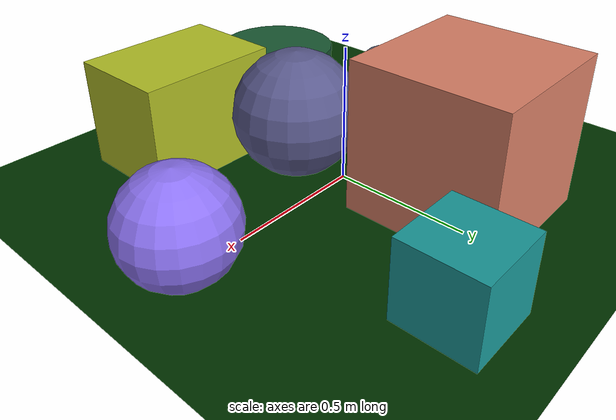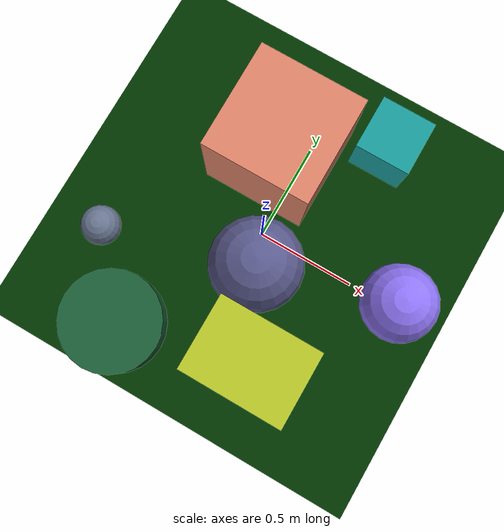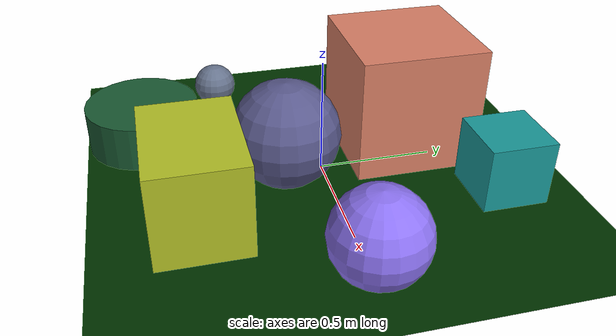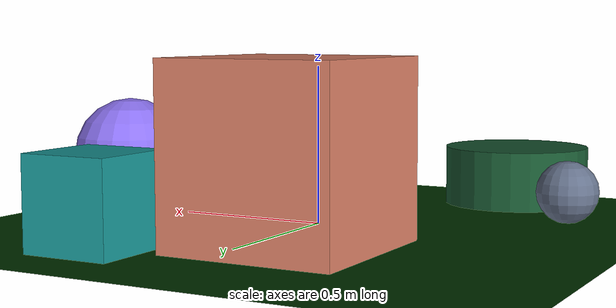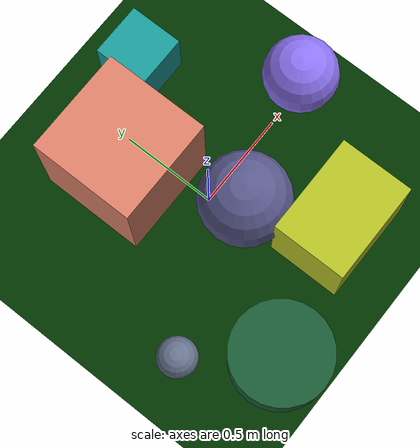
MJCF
<mujoco>
   <asset>
<texture type="skybox" builtin="gradient" rgb1="0.5 0.0 0.1" rgb2="0.8 0.1 0.3" width="256" height="256"/>
<texture name="gradient_0" builtin="gradient" rgb1="0.5 0.0 0.9" rgb2="0.6 0.9 1.0" width="200" height="200"/>
<texture name="checker_1" builtin="checker" type="2d" rgb1="0.8 0.6 0.6" rgb2="0.9 0.4 0.2" width="200" height="200"/>
<texture name="checker_2" builtin="checker" type="2d" rgb1="0.2 0.4 0.4" rgb2="0.0 0.3 0.0" width="200" height="200"/>
<texture name="checker_3" builtin="checker" type="2d" rgb1="0.3 0.0 0.9" rgb2="0.5 0.9 0.2" width="200" height="200"/>
<texture name="gradient_4" builtin="gradient" rgb1="0.5 0.8 0.2" rgb2="0.9 0.7 0.1" width="200" height="200"/>
<texture name="flat_5" builtin="flat" rgb1="0.1 0.6 0.6" rgb2="0.1 0.6 0.6"  width="200" height="200"/>
<texture name="checker_6" builtin="checker" type="2d" rgb1="0.3 0.6 0.9" rgb2="0.4 0.1 0.2" width="200" height="200"/><material name="gradient_0_mat" reflectance="0" texture="gradient_0" texuniform="true"/>
<material name="checker_1_mat" reflectance="0" texrepeat="9 9" texture="checker_1" texuniform="false" />
<material name="checker_2_mat" reflectance="0" texrepeat="2 2" texture="checker_2" texuniform="false" />
<material name="checker_3_mat" reflectance="0" texrepeat="10 10" texture="checker_3" texuniform="false" />
<material name="gradient_4_mat" reflectance="0" texture="gradient_4" texuniform="true"/>
<material name="flat_5_mat" reflectance="0" texture="flat_5" texuniform="true"/>
<material name="checker_6_mat" reflectance="0" texrepeat="7 7" texture="checker_6" texuniform="false" />
   </asset>

   <worldbody>
      <light diffuse=".9 .9 .9" pos="0 0 3" dir="0 0 -1"/>
     <geom type="plane" size="1 1 0.1" rgba="0.0 0.2 0.0 1"/>
<geom type="sphere" pos="0.73 0.01 0.19" size="0.19 0.19 0.19" material="gradient_0_mat" />
<geom type="box" pos="-0.13 0.4 0.27" size="0.27 0.27 0.27" material="checker_1_mat" />
<geom type="cylinder" pos="-0.4 -0.74 0.1" size="0.25 0.1 0.1" material="checker_2_mat" />
<geom type="sphere" pos="-0.7 -0.37 0.1" size="0.1 0.1 0.1" material="checker_3_mat" />
<geom type="box" pos="0.26 -0.57 0.2" size="0.26 0.19 0.2" material="gradient_4_mat" />
<geom type="box" pos="0.33 0.69 0.14" size="0.14 0.14 0.14" material="flat_5_mat" />
<geom type="sphere" pos="0.06 -0.17 0.23" size="0.23 0.23 0.23" material="checker_6_mat" /><camera euler="60 0 180" fovy="60" name="camera_a" pos="0 -1.5 1"></camera>   </worldbody>
</mujoco>
